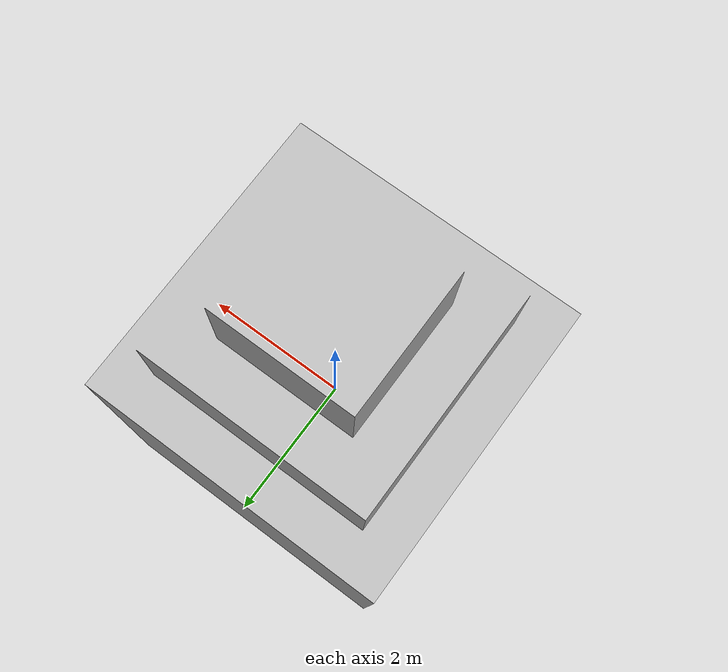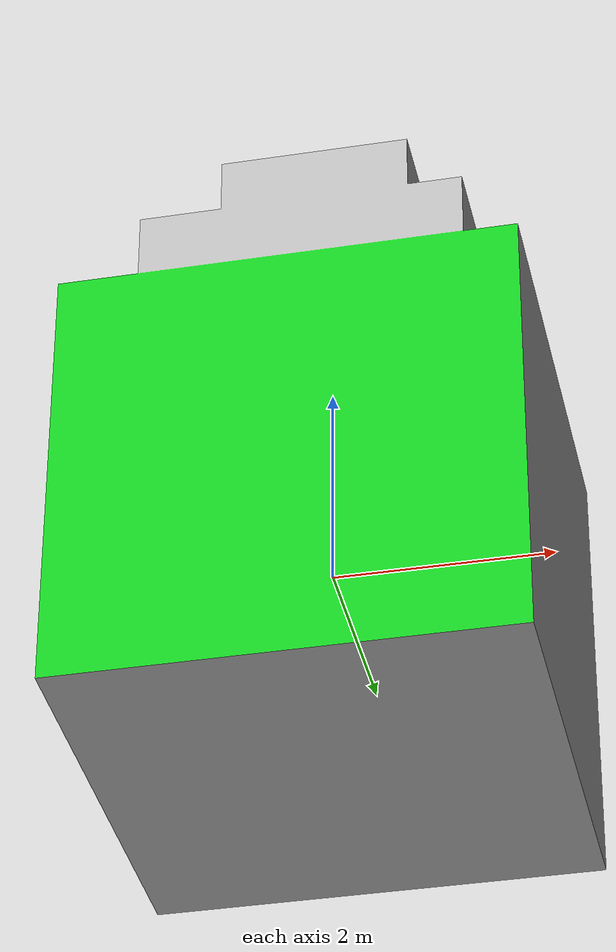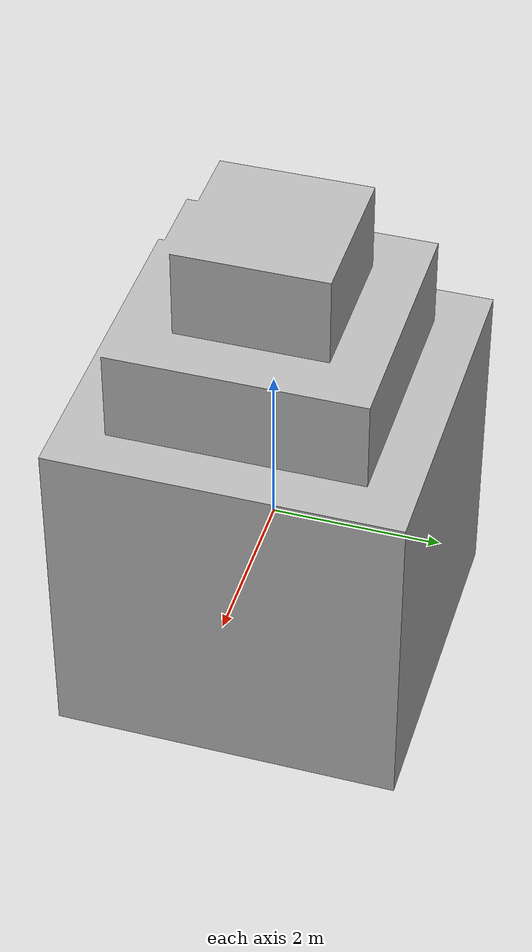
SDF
<sdf version='1.5'>
  <!-- Draw Model -->
  <model name="teset">
    <static>true</static>
    <link name="teset">
      <collision name="collision">
        <geometry>
          <mesh>
            <uri>model://teset/teset.stl</uri>
          </mesh>
        </geometry>
      </collision>

      <visual name="visual">
        <geometry>
          <mesh>
            <uri>model://teset/teset.dae</uri>
          </mesh>
        </geometry>
      </visual>
    </link>
  </model>
</sdf>
